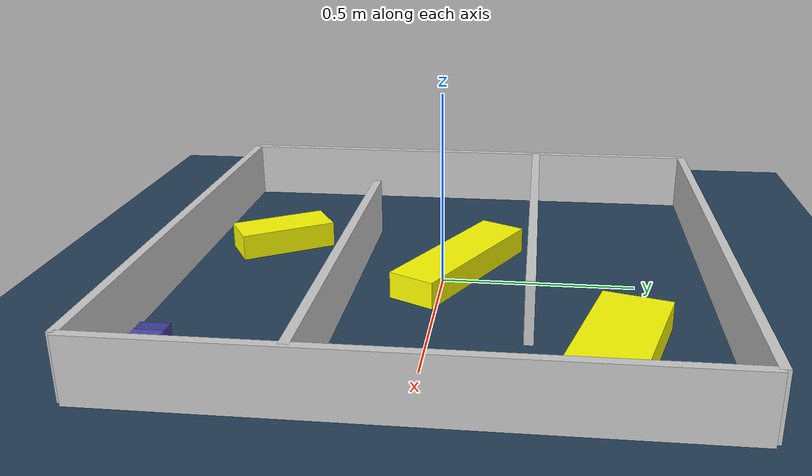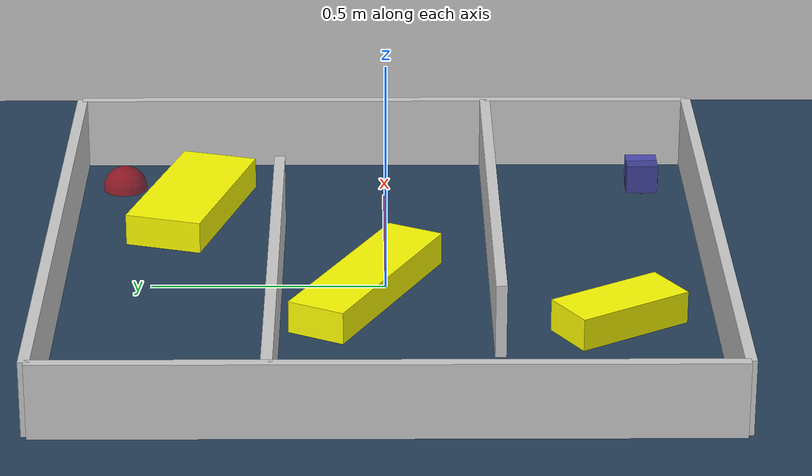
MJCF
<?xml version='1.0' encoding='utf-8'?>
<mujoco model="generated_environment">
  <option timestep="0.002" integrator="implicitfast" cone="elliptic" iterations="100" gravity="0 0 -9.81" />
  <default>
    <geom density="1" />
  </default>
  <asset>
    <texture builtin="gradient" height="3072" rgb1="0.3 0.5 0.7" rgb2="0 0 0" type="skybox" width="512" />
    <texture builtin="checker" height="300" mark="edge" markrgb="0.8 0.8 0.8" name="groundplane" rgb1="0.2 0.3 0.4" rgb2="0.1 0.2 0.3" type="2d" width="300" />
    <material name="groundplane" reflectance="0.2" texrepeat="5 5" texture="groundplane" texuniform="true" />
    <material name="robot" rgba="1.0 1.0 0.0 1.0" />
  </asset>
  <worldbody>
    <light dir="0 0 -1" directional="true" pos="0 0 1.5" />
    <geom condim="4" friction="0.5 0.005 0.001" material="groundplane" name="floor" size="0 0 0.05" type="plane" />
    <body name="walls">
      <geom name="wall_1" condim="4" pos="-0.699000 0.000000 0.080000" rgba="0.800000011920929 0.800000011920929 0.800000011920929 1.0" size="0.011650 0.699000 0.080000" type="box" />
      <geom name="wall_2" condim="4" pos="0.699000 0.000000 0.080000" rgba="0.800000011920929 0.800000011920929 0.800000011920929 1.0" size="0.011650 0.699000 0.080000" type="box" />
      <geom name="wall_3" condim="4" pos="0.000000 -0.699000 0.080000" rgba="0.800000011920929 0.800000011920929 0.800000011920929 1.0" size="0.699000 0.011650 0.080000" type="box" />
      <geom name="wall_4" condim="4" pos="0.000000 0.699000 0.080000" rgba="0.800000011920929 0.800000011920929 0.800000011920929 1.0" size="0.699000 0.011650 0.080000" type="box" />
      <geom name="wall_5" condim="4" pos="0.174750 -0.233000 0.080000" rgba="0.800000011920929 0.800000011920929 0.800000011920929 1.0" size="0.524250 0.011650 0.080000" type="box" />
      <geom name="wall_6" condim="4" pos="-0.174750 0.233000 0.080000" rgba="0.800000011920929 0.800000011920929 0.800000011920929 1.0" size="0.524250 0.011650 0.080000" type="box" />
    </body>
    <body name="car" pos="0.5150000000000002 -0.5849999999999999 0.010000">
      <freejoint name="car_freejoint" />
      <inertial pos="0.000000 0 0.037500" mass="0.350000" diaginertia="0.000266 0.000266 0.000286" />
      <geom name="front_chassis_collision" type="box" pos="0.017500 0 0.037500" size="0.017500 0.035000 0.032500" rgba="0.3 0.3 0.7 1" />
      <geom name="rear_chassis_collision" type="box" pos="-0.017500 0 0.037500" size="0.017500 0.035000 0.032500" rgba="0.25 0.25 0.6 1" />
      <geom name="front_marker" type="box" pos="0.034000 0 0.050500" size="0.002000 0.015000 0.010000" rgba="1.0 0.2 0.2 1" contype="0" conaffinity="0" />
      <body name="rear_support_body" pos="-0.030000 0.000000 0.002500">
        <joint name="rear_caster_joint" type="ball" damping="0.0001" />
        <inertial pos="0 0 0" mass="0.025000" diaginertia="0.000001 0.000001 0.000001" />
        <geom name="rear_support" type="sphere" pos="0 0 0" size="0.002500" friction="0.000000 0.000000 0.000000" rgba="0.7 0.1 0.1 1" />
      </body>
      <body name="front_support_body" pos="0.030000 0.000000 0.002500">
        <joint name="front_caster_joint" type="ball" damping="0.0001" />
        <inertial pos="0 0 0" mass="0.025000" diaginertia="0.000001 0.000001 0.000001" />
        <geom name="front_support" type="sphere" pos="0 0 0" size="0.002500" friction="0.000000 0.000000 0.000000" rgba="0.1 0.7 0.1 1" />
      </body>
      <body name="left_wheel" pos="0.000000 0.037500 0.015000">
        <inertial pos="0 0 0" mass="0.050000" diaginertia="0.000003 0.000006 0.000003" />
        <joint name="left_wheel_joint" type="hinge" axis="0 1 0" />
        <geom name="left_wheel_collision" type="cylinder" size="0.015000 0.000500" euler="90 0 0" rgba="0.1 0.1 0.1 1" />
      </body>
      <body name="right_wheel" pos="0.000000 -0.037500 0.015000">
        <inertial pos="0 0 0" mass="0.050000" diaginertia="0.000003 0.000006 0.000003" />
        <joint name="right_wheel_joint" type="hinge" axis="0 1 0" />
        <geom name="right_wheel_collision" type="cylinder" size="0.015000 0.000500" euler="90 0 0" rgba="0.1 0.1 0.1 1" />
      </body>
    </body>
    <body name="obstacle_0_movable">
      <geom name="obstacle_0_movable" condim="4" pos="-0.2006665981814687 -0.4852502936461811 0.035" euler="0 0 31.480963322176983" friction="0.0 0.005 0.001" rgba="1 1 0 1" size="0.059528043998614125 0.1318862761883377 0.035" type="box" mass="0.1" />
      <joint type="free" />
    </body>
    <body name="obstacle_1_movable">
      <geom name="obstacle_1_movable" condim="4" pos="0.39239549690918474 0.4326106819604687 0.035" euler="0 0 343.57362139146994" friction="0.0 0.005 0.001" rgba="1 1 0 1" size="0.19554981953651346 0.08574959491761586 0.035" type="box" mass="0.1" />
      <joint type="free" />
    </body>
    <body name="obstacle_2_movable">
      <geom name="obstacle_2_movable" condim="4" pos="-0.05107938103001397 0.04033022870119862 0.035" euler="0 0 332.7166781716515" friction="0.0 0.005 0.001" rgba="1 1 0 1" size="0.2306922505000491 0.06402592469364633 0.035" type="box" mass="0.1" />
      <joint type="free" />
    </body>
    <site name="goal" type="sphere" pos="0.5550000000000003 0.5949999999999999 0.0" size="0.05" rgba="1 0 0 0.5" />
  </worldbody>
  <actuator>
    <velocity name="left_wheel_drive" joint="left_wheel_joint" ctrlrange="-25.000000 25.000000" kv="0.750000" forcerange="-0.300000 0.300000" />
    <velocity name="right_wheel_drive" joint="right_wheel_joint" ctrlrange="-25.000000 25.000000" kv="0.750000" forcerange="-0.300000 0.300000" />
  </actuator>
</mujoco>
